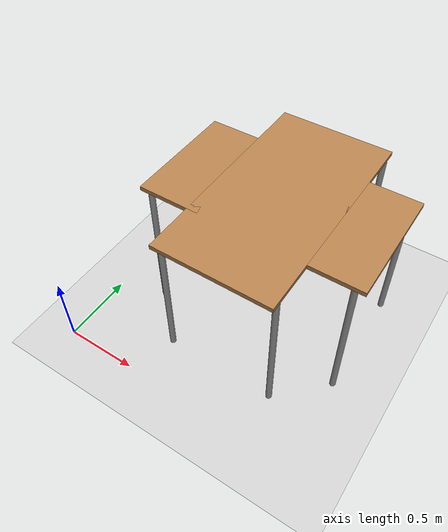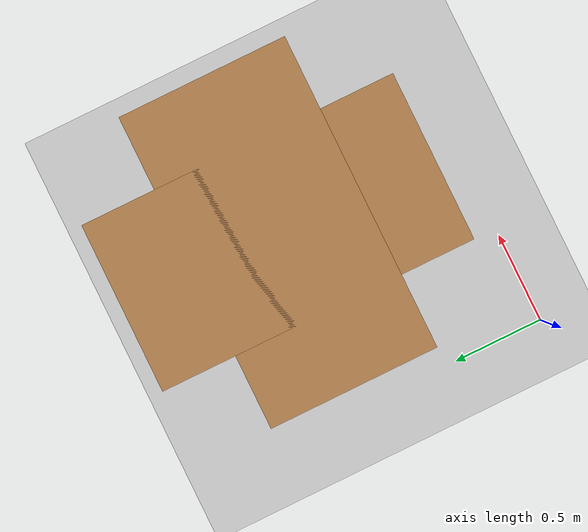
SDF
<?xml version="1.0" ?>
<sdf version="1.6">
  <world name="lab2">

    <!-- Usar o tempo real -->
    <physics type='ode'>
      <real_time_update_rate>1000.0</real_time_update_rate>
    </physics>

    <!-- Iluminação -->
    <include>
      <uri>model://sun</uri>
    </include>

    <!-- Chão plano com textura -->
    <include>
      <uri>model://ground_plane</uri>
    </include>

    <!-- Paredes do laboratório -->

    <!-- Mesa -->
    <include>
      <uri>model://table</uri>
      <pose>1 1 0 0 0 0</pose>
    </include>

    <!-- Mesa 2 -->
    <include>
      <uri>model://table</uri>
      <pose>1 1 0 0 0 1.57</pose>
    </include>

    <!-- Objeto sobre a mesa (ex: esfera vermelha) -->

    <!-- Câmera (opcional, apenas visual) -->

  </world>
</sdf>

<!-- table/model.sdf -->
<sdf version="1.5">
  <model name="table">
    <static>true</static>
    <link name="link">
      <collision name="surface">
        <pose>0 0 1.0 0 0 0</pose>
        <geometry>
          <box>
            <size>1.5 0.8 0.03</size>
          </box>
        </geometry>
        <surface>
          <friction>
            <ode>
              <mu>0.6</mu>
              <mu2>0.6</mu2>
            </ode>
          </friction>
        </surface>
      </collision>
      <visual name="visual1">
        <pose>0 0 1.0 0 0 0</pose>
        <geometry>
          <box>
            <size>1.5 0.8 0.03</size>
          </box>
        </geometry>
        <material>
          <script>
            <uri>model://media/materials/scripts/gazebo.material</uri>
            <name>Gazebo/Wood</name>
          </script>
        </material>
      </visual>
      <collision name="front_left_leg">
        <pose>0.68 0.38 0.5 0 0 0</pose>
        <geometry>
          <cylinder>
            <radius>0.02</radius>
            <length>1.0</length>
          </cylinder>
        </geometry>
      </collision>
      <visual name="front_left_leg">
        <pose>0.68 0.38 0.5 0 0 0</pose>
        <geometry>
          <cylinder>
            <radius>0.02</radius>
            <length>1.0</length>
          </cylinder>
        </geometry>
        <material>
          <script>
            <uri>model://media/materials/scripts/gazebo.material</uri>
            <name>Gazebo/Grey</name>
          </script>
        </material>
      </visual>
      <collision name="front_right_leg">
        <pose>0.68 -0.38 0.5 0 0 0</pose>
        <geometry>
          <cylinder>
            <radius>0.02</radius>
            <length>1.0</length>
          </cylinder>
        </geometry>
      </collision>
      <visual name="front_right_leg">
        <pose>0.68 -0.38 0.5 0 0 0</pose>
        <geometry>
          <cylinder>
            <radius>0.02</radius>
            <length>1.0</length>
          </cylinder>
        </geometry>
        <material>
          <script>
            <uri>model://media/materials/scripts/gazebo.material</uri>
            <name>Gazebo/Grey</name>
          </script>
        </material>
      </visual>
      <collision name="back_right_leg">
        <pose>-0.68 -0.38 0.5 0 0 0</pose>
        <geometry>
          <cylinder>
            <radius>0.02</radius>
            <length>1.0</length>
          </cylinder>
        </geometry>
      </collision>
      <visual name="back_right_leg">
        <pose>-0.68 -0.38 0.5 0 0 0</pose>
        <geometry>
          <cylinder>
            <radius>0.02</radius>
            <length>1.0</length>
          </cylinder>
        </geometry>
        <material>
          <script>
            <uri>model://media/materials/scripts/gazebo.material</uri>
            <name>Gazebo/Grey</name>
          </script>
        </material>
      </visual>
      <collision name="back_left_leg">
        <pose>-0.68 0.38 0.5 0 0 0</pose>
        <geometry>
          <cylinder>
            <radius>0.02</radius>
            <length>1.0</length>
          </cylinder>
        </geometry>
      </collision>
      <visual name="back_left_leg">
        <pose>-0.68 0.38 0.5 0 0 0</pose>
        <geometry>
          <cylinder>
            <radius>0.02</radius>
            <length>1.0</length>
          </cylinder>
        </geometry>
        <material>
          <script>
            <uri>model://media/materials/scripts/gazebo.material</uri>
            <name>Gazebo/Grey</name>
          </script>
        </material>
      </visual>
    </link>
  </model>
</sdf>
